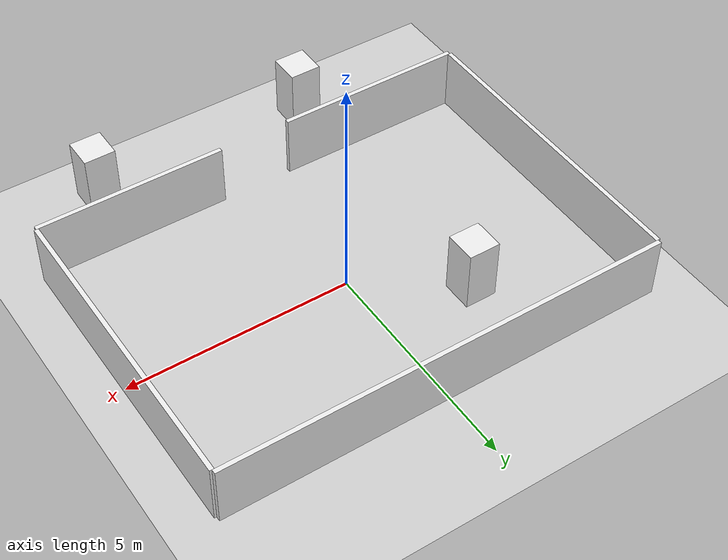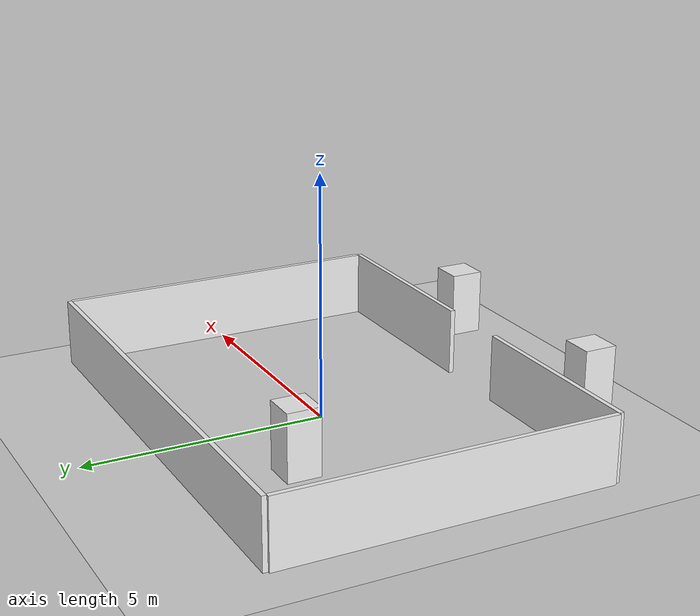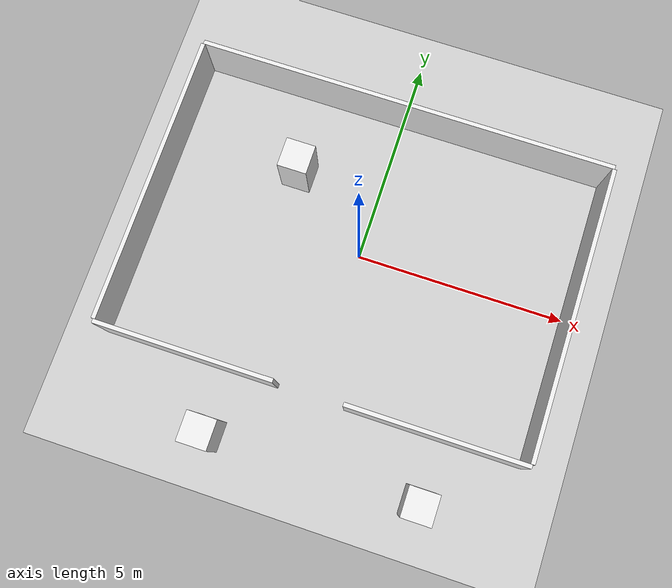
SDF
<?xml version="1.0" ?>
<sdf version="1.4">
  <!-- World-->
  <world name="default">
    <include>
      <uri>model://ground_plane</uri>
    </include>

    <!-- Global light source -->
    <include>
      <uri>model://sun</uri>
    </include>

    <!-- Objects -->
   <model name='wall_y_p'>
      <pose>0 3.5 0.7 0.000000 0.000000 0.00000</pose>
      <link name='wall_yp_link'>
        <inertial>
          <mass>1.000000</mass>
          <inertia>
            <ixx>0.0000619</ixx>
            <ixy>0.000000</ixy>
            <ixz>0.000000</ixz>
            <iyy>0.0002667</iyy>
            <iyz>0.000000</iyz>
            <izz>0.0002219</izz>
          </inertia>
        </inertial>
        <collision name='collision'>
          <geometry>
            <box>
              <size>10 0.10000 1.40000</size>
            </box>
          </geometry>
          <surface>
            <bounce/>
            <friction>
              <ode>
                <mu>10</mu>
                <mu2>10</mu2>
              </ode>
            </friction>
            <contact>
              <ode>
                <kp>100000.0</kp>
                <kd>1.0</kd>
                <max_vel>30</max_vel>
              </ode>
            </contact>
          </surface>
        </collision>
        <visual name='visual'>
          <geometry>
            <box>
              <size>10 0.10000 1.40000</size>
            </box>
          </geometry>
          <material>
            <script>
              <uri>file://media/materials/scripts/gazebo.material</uri>
              <name>Gazebo/White</name>
            </script>
          </material>
        </visual>
        <velocity_decay>
          <linear>0.070000</linear>
          <angular>0.000000</angular>
        </velocity_decay>
        <self_collide>0</self_collide>
        <kinematic>1</kinematic>
        <gravity>1</gravity>
      </link>
      <static>1</static>
    </model>

    <model name='wall_y_n_1'>
      <pose>2.9 -3.5 0.7 0.000000 0.000000 0.00000</pose>
      <link name='wall_yn1_link'>
        <inertial>
          <mass>1.000000</mass>
          <inertia>
            <ixx>0.0000619</ixx>
            <ixy>0.000000</ixy>
            <ixz>0.000000</ixz>
            <iyy>0.0002667</iyy>
            <iyz>0.000000</iyz>
            <izz>0.0002219</izz>
          </inertia>
        </inertial>
        <collision name='collision'>
          <geometry>
            <box>
              <size>4.2 0.10000 1.40000</size>
            </box>
          </geometry>
          <surface>
            <bounce/>
            <friction>
              <ode>
                <mu>10</mu>
                <mu2>10</mu2>
              </ode>
            </friction>
            <contact>
              <ode>
                <kp>100000.0</kp>
                <kd>1.0</kd>
                <max_vel>30</max_vel>
              </ode>
            </contact>
          </surface>
        </collision>
        <visual name='visual'>
          <geometry>
            <box>
              <size>4.2 0.10000 1.40000</size>
            </box>
          </geometry>
          <material>
            <script>
              <uri>file://media/materials/scripts/gazebo.material</uri>
              <name>Gazebo/White</name>
            </script>
          </material>
        </visual>
        <velocity_decay>
          <linear>0.070000</linear>
          <angular>0.000000</angular>
        </velocity_decay>
        <self_collide>0</self_collide>
        <kinematic>1</kinematic>
        <gravity>1</gravity>
      </link>
      <static>1</static>
    </model>

    <model name='wall_y_n_2'>
      <pose>-2.9 -3.5 0.7 0.000000 0.000000 0.00000</pose>
      <link name='wall_yn2_link'>
        <inertial>
          <mass>1.000000</mass>
          <inertia>
            <ixx>0.0000619</ixx>
            <ixy>0.000000</ixy>
            <ixz>0.000000</ixz>
            <iyy>0.0002667</iyy>
            <iyz>0.000000</iyz>
            <izz>0.0002219</izz>
          </inertia>
        </inertial>
        <collision name='collision'>
          <geometry>
            <box>
              <size>4.2 0.10000 1.40000</size>
            </box>
          </geometry>
          <surface>
            <bounce/>
            <friction>
              <ode>
                <mu>10</mu>
                <mu2>10</mu2>
              </ode>
            </friction>
            <contact>
              <ode>
                <kp>100000.0</kp>
                <kd>1.0</kd>
                <max_vel>30</max_vel>
              </ode>
            </contact>
          </surface>
        </collision>
        <visual name='visual'>
          <geometry>
            <box>
              <size>4.2 0.10000 1.40000</size>
            </box>
          </geometry>
          <material>
            <script>
              <uri>file://media/materials/scripts/gazebo.material</uri>
              <name>Gazebo/White</name>
            </script>
          </material>
        </visual>
        <velocity_decay>
          <linear>0.070000</linear>
          <angular>0.000000</angular>
        </velocity_decay>
        <self_collide>0</self_collide>
        <kinematic>1</kinematic>
        <gravity>1</gravity>
      </link>
      <static>1</static>
    </model>

    <model name='wall_x_p'>
      <pose>5 0 0.7 0.000000 0.000000 0.00000</pose>
      <link name='wall_xp_link'>
        <inertial>
          <mass>1.000000</mass>
          <inertia>
            <ixx>0.0000619</ixx>
            <ixy>0.000000</ixy>
            <ixz>0.000000</ixz>
            <iyy>0.0002667</iyy>
            <iyz>0.000000</iyz>
            <izz>0.0002219</izz>
          </inertia>
        </inertial>
        <collision name='collision'>
          <geometry>
            <box>
              <size>0.1 6.9 1.40000</size>
            </box>
          </geometry>
          <surface>
            <bounce/>
            <friction>
              <ode>
                <mu>10</mu>
                <mu2>10</mu2>
              </ode>
            </friction>
            <contact>
              <ode>
                <kp>100000.0</kp>
                <kd>1.0</kd>
                <max_vel>30</max_vel>
              </ode>
            </contact>
          </surface>
        </collision>
        <visual name='visual'>
          <geometry>
            <box>
              <size>0.1 6.9 1.40000</size>
            </box>
          </geometry>
          <material>
            <script>
              <uri>file://media/materials/scripts/gazebo.material</uri>
              <name>Gazebo/White</name>
            </script>
          </material>
        </visual>
        <velocity_decay>
          <linear>0.070000</linear>
          <angular>0.000000</angular>
        </velocity_decay>
        <self_collide>0</self_collide>
        <kinematic>1</kinematic>
        <gravity>1</gravity>
      </link>
      <static>1</static>
    </model>

    <model name='wall_x_n'>
      <pose>-5 0 0.7 0.000000 0.000000 0.00000</pose>
      <link name='wall_xn_link'>
        <inertial>
          <mass>1.000000</mass>
          <inertia>
            <ixx>0.0000619</ixx>
            <ixy>0.000000</ixy>
            <ixz>0.000000</ixz>
            <iyy>0.0002667</iyy>
            <iyz>0.000000</iyz>
            <izz>0.0002219</izz>
          </inertia>
        </inertial>
        <collision name='collision'>
          <geometry>
            <box>
              <size>0.1 6.9 1.40000</size>
            </box>
          </geometry>
          <surface>
            <bounce/>
            <friction>
              <ode>
                <mu>10</mu>
                <mu2>10</mu2>
              </ode>
            </friction>
            <contact>
              <ode>
                <kp>100000.0</kp>
                <kd>1.0</kd>
                <max_vel>30</max_vel>
              </ode>
            </contact>
          </surface>
        </collision>
        <visual name='visual'>
          <geometry>
            <box>
              <size>0.1 6.9 1.40000</size>
            </box>
          </geometry>
          <material>
            <script>
              <uri>file://media/materials/scripts/gazebo.material</uri>
              <name>Gazebo/White</name>
            </script>
          </material>
        </visual>
        <velocity_decay>
          <linear>0.070000</linear>
          <angular>0.000000</angular>
        </velocity_decay>
        <self_collide>0</self_collide>
        <kinematic>1</kinematic>
        <gravity>1</gravity>
      </link>
      <static>1</static>
    </model>

    <model name='big_pile_1'>
      <pose>-2 1.5 0.7 0.000000 0.000000 0.00000</pose>
      <link name='big_pile_link_1'>
        <inertial>
          <mass>1.000000</mass>
          <inertia>
            <ixx>0.0000619</ixx>
            <ixy>0.000000</ixy>
            <ixz>0.000000</ixz>
            <iyy>0.0002667</iyy>
            <iyz>0.000000</iyz>
            <izz>0.0002219</izz>
          </inertia>
        </inertial>
        <collision name='collision'>
          <geometry>
            <box>
              <size>0.7 0.7 1.40000</size>
            </box>
          </geometry>
          <surface>
            <bounce/>
            <friction>
              <ode>
                <mu>10</mu>
                <mu2>10</mu2>
              </ode>
            </friction>
            <contact>
              <ode>
                <kp>100000.0</kp>
                <kd>1.0</kd>
                <max_vel>30</max_vel>
              </ode>
            </contact>
          </surface>
        </collision>
        <visual name='visual'>
          <geometry>
            <box>
              <size>0.7 0.7 1.40000</size>
            </box>
          </geometry>
          <material>
            <script>
              <uri>file://media/materials/scripts/gazebo.material</uri>
              <name>Gazebo/White</name>
            </script>
          </material>
        </visual>
        <velocity_decay>
          <linear>0.070000</linear>
          <angular>0.000000</angular>
        </velocity_decay>
        <self_collide>0</self_collide>
        <kinematic>1</kinematic>
        <gravity>1</gravity>
      </link>
      <static>1</static>
    </model>

    <model name='big_pile_2'>
      <pose>-2 -5 0.7 0.000000 0.000000 0.00000</pose>
      <link name='big_pile_link_2'>
        <inertial>
          <mass>1.000000</mass>
          <inertia>
            <ixx>0.0000619</ixx>
            <ixy>0.000000</ixy>
            <ixz>0.000000</ixz>
            <iyy>0.0002667</iyy>
            <iyz>0.000000</iyz>
            <izz>0.0002219</izz>
          </inertia>
        </inertial>
        <collision name='collision'>
          <geometry>
            <box>
              <size>0.7 0.7 1.40000</size>
            </box>
          </geometry>
          <surface>
            <bounce/>
            <friction>
              <ode>
                <mu>10</mu>
                <mu2>10</mu2>
              </ode>
            </friction>
            <contact>
              <ode>
                <kp>100000.0</kp>
                <kd>1.0</kd>
                <max_vel>30</max_vel>
              </ode>
            </contact>
          </surface>
        </collision>
        <visual name='visual'>
          <geometry>
            <box>
              <size>0.7 0.7 1.40000</size>
            </box>
          </geometry>
          <material>
            <script>
              <uri>file://media/materials/scripts/gazebo.material</uri>
              <name>Gazebo/White</name>
            </script>
          </material>
        </visual>
        <velocity_decay>
          <linear>0.070000</linear>
          <angular>0.000000</angular>
        </velocity_decay>
        <self_collide>0</self_collide>
        <kinematic>1</kinematic>
        <gravity>1</gravity>
      </link>
      <static>1</static>
    </model>

    <model name='big_pile_3'>
      <pose>3 -5 0.7 0.000000 0.000000 0.00000</pose>
      <link name='big_pile_link_3'>
        <inertial>
          <mass>1.000000</mass>
          <inertia>
            <ixx>0.0000619</ixx>
            <ixy>0.000000</ixy>
            <ixz>0.000000</ixz>
            <iyy>0.0002667</iyy>
            <iyz>0.000000</iyz>
            <izz>0.0002219</izz>
          </inertia>
        </inertial>
        <collision name='collision'>
          <geometry>
            <box>
              <size>0.7 0.7 1.40000</size>
            </box>
          </geometry>
          <surface>
            <bounce/>
            <friction>
              <ode>
                <mu>10</mu>
                <mu2>10</mu2>
              </ode>
            </friction>
            <contact>
              <ode>
                <kp>100000.0</kp>
                <kd>1.0</kd>
                <max_vel>30</max_vel>
              </ode>
            </contact>
          </surface>
        </collision>
        <visual name='visual'>
          <geometry>
            <box>
              <size>0.7 0.7 1.40000</size>
            </box>
          </geometry>
          <material>
            <script>
              <uri>file://media/materials/scripts/gazebo.material</uri>
              <name>Gazebo/White</name>
            </script>
          </material>
        </visual>
        <velocity_decay>
          <linear>0.070000</linear>
          <angular>0.000000</angular>
        </velocity_decay>
        <self_collide>0</self_collide>
        <kinematic>1</kinematic>
        <gravity>1</gravity>
      </link>
      <static>1</static>
    </model>

  </world>
</sdf>
